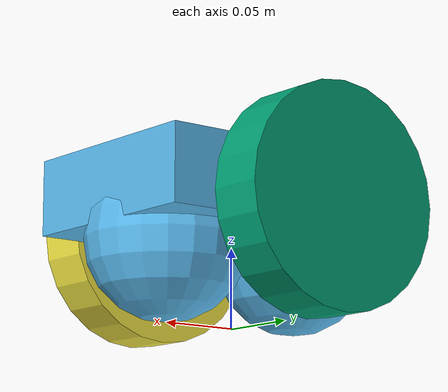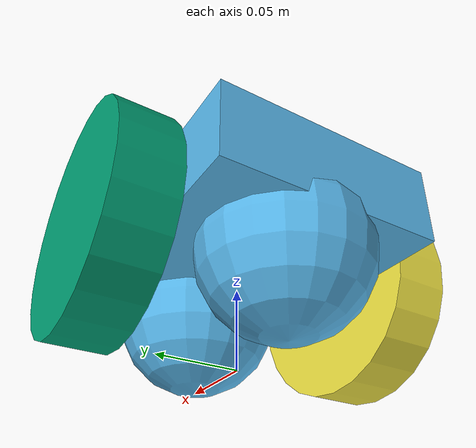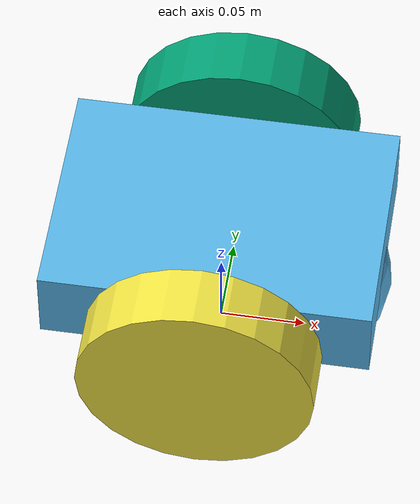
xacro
<?xml version="1.0"?>
<robot name="testmodel" xmlns:xacro="http://ros.org/wiki/xacro">
  <xacro:include filename="$(find myrobot)/models/testmodel/testmodel.gazebo.xacro"/>

    <!-- LINKS -->
    <link name="base_footprint"/>

    <joint name="base_joint" type="fixed">
      <parent link="base_footprint"/>
      <child link="cube_base"/>
      <origin xyz="0.0 0.0 0.08" rpy="0 0 0"/>
    </joint>

    <link name="cube_base">
      <inertial>
        <origin xyz="0 0 0" rpy="0 0 0"/>
        <mass value="8.2573504e-01"/>
        <inertia ixx="2.2124416e-03" ixy="-1.2294101e-05" ixz="3.4938785e-05"
                 iyy="2.1193702e-03" iyz="-5.0120904e-06"
                 izz="2.0064271e-03" />
      </inertial>

      <collision name="cube_base_collision">
        <origin xyz="0 0 0 " rpy="0 0 0"/>
        <geometry>
          <box size="0.19 0.134 0.047"/>
        </geometry>
      </collision>

     <visual name="cube_base_visual">
        <geometry>
          <box size="0.19 0.134 0.047"/>
        </geometry>
      </visual>

      <collision name = "caster_collision">
      <origin xyz="-0.05 0 -0.03" rpy="0 0 0"/>
        <geometry>
          <sphere radius="0.05"/>
        </geometry>
        <surface>
          <friction>
            <ode>
              <mu>0</mu>
              <mu2>0</mu2>
              <slip1>0.1</slip1>
              <slip2>0.1</slip2>
            </ode>
          </friction>
        </surface>
      </collision>

      <visual name="caster_visual">
      <origin xyz="-0.05 0 -0.03" rpy="0 0 0"/>
        <geometry>
          <sphere radius="0.05"/>
        </geometry>
      </visual>

      <collision name = 'caster2_collision'>
      <origin xyz="0.05 0 -0.03" rpy="0 0 0"/>
        <geometry>
          <sphere radius="0.05"/>
        </geometry>
        <surface>
          <friction>
            <ode>
              <mu>0</mu>
              <mu2>0</mu2>
              <slip1>0.1</slip1>
              <slip2>0.1</slip2>
            </ode>
          </friction>
        </surface>
      </collision>

      <visual name="caster2_visual">
      <origin xyz="0.05 0 -0.03" rpy="0 0 0"/>
        <geometry>
          <sphere radius="0.05"/>
        </geometry>
      </visual>

    </link>

    <joint name="wheel_left_joint" type="continuous">
      <parent link="cube_base"/>
      <child link="wheel_left_link"/>
      <origin xyz="0. 0.087 -0.013" rpy="-1.57 0 0"/>
      <axis xyz="0 0 1"/>
    </joint>

    <link name="wheel_left_link">
      <inertial>
        <mass value="0.2"/>
        <origin rpy="0 0 0" xyz="0 0 0"/>
        <inertia ixx="0.00052666666" ixy="0" ixz="0" iyy="0.00052666666" iyz="0" izz="0.001"/>
      </inertial>

      <collision name="wheel_left_link_collision">
        <geometry>
          <cylinder length="0.035" radius="0.06825"/>
        </geometry>
      </collision>

      <visual name="wheel_left_link_visual">
        <origin xyz="0 0 0" rpy="0 0 0"/>
        <geometry>
          <cylinder length="0.035" radius="0.06825"/>
        </geometry>
      </visual>

    </link>

    <joint name="wheel_right_joint" type="continuous">
      <parent link="cube_base"/>
      <child link="wheel_right_link"/>
      <origin xyz="0. -0.087 -0.013" rpy="-1.57 0 0"/>
      <axis xyz="0 0 1"/>
    </joint>

    <link name="wheel_right_link">
      <inertial>
        <mass value="0.2"/>
        <origin rpy="0 0 0" xyz="0 0 0"/>
        <inertia ixx="0.00052666666" ixy="0" ixz="0" iyy="0.00052666666" iyz="0" izz="0.001"/>
      </inertial>

      <collision name="wheel_right_link_collision">
        <geometry>
          <cylinder length="0.035" radius="0.06825"/>
        </geometry>
      </collision>

      <visual name="wheel_right_link_visual">
        <origin xyz="0 0 0" rpy="0 0 0"/>
        <geometry>
          <cylinder length="0.035" radius="0.06825"/>
        </geometry>
      </visual>

    </link>

</robot>
